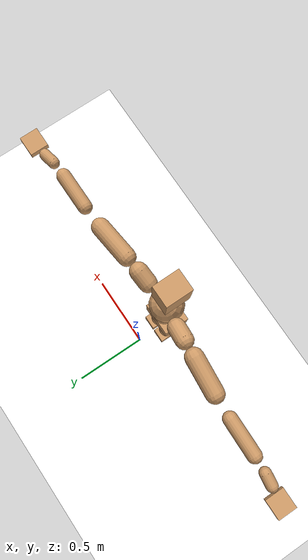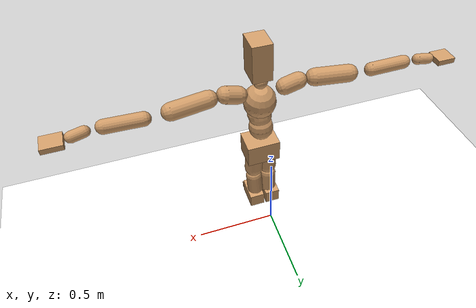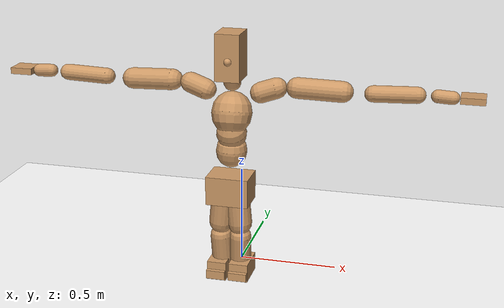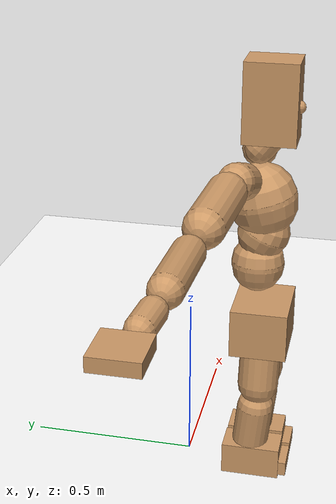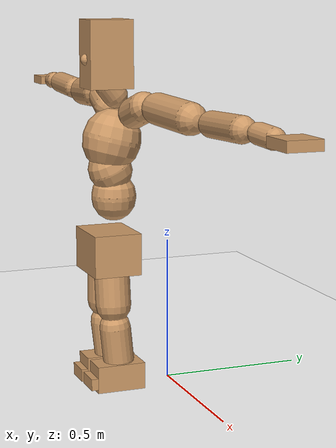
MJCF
<mujoco model="humanoid">
  <option integrator="implicitfast" />

  <visual>
    <global offwidth="1280" offheight="960" />
    <headlight active="1" ambient="0.34 0.34 0.34" diffuse="0.5 0.5 0.5" />
  </visual>

  <default>
    <joint damping="2" stiffness="2" armature="0.01" limited="true" solimplimit="0 .99 .01" />
    <geom condim="1" friction="0.7 0.005 0.0001" solimp=".99 .99 .003" solref="0.015 1" margin="0.001" rgba="0.8 0.6 .4 1" />
    <default class="smplcontact">
      <geom condim="3" friction="1. 0.005 0.0001" solref="0.015 1" solimp="0.98 0.98 0.001" priority="1" />
    </default>
    <default class="stiff_medium">
      <joint stiffness="10" />
    </default>
    <default class="stiff_medium_higher">
      <joint stiffness="50" />
    </default>
    <default class="stiff_high">
      <joint stiffness="100" />
    </default>
  </default>

  <asset>
    <texture type="skybox" builtin="gradient" rgb1="0.99 0.99 0.99" rgb2="0.608 0.828 0.892" width="100" />
    <texture builtin="flat" height="1278" mark="cross" markrgb="1 1 1" name="texgeom" random="0.01" rgb1="0.8 0.6 0.4" rgb2="0.8 0.6 0.4" type="cube" width="127" />
    <texture name="texplane" type="2d" builtin="checker" markrgb="1 1 1" rgb1="0.756 0.772 0.76" rgb2="0.6 0.6 0.6" width="100" height="100" />
    <material name="MatPlane" reflectance="0.5" texture="texplane" texrepeat="1 1" texuniform="true" />
    <material name="geom" texture="texgeom" texuniform="true" />
  </asset>

  <worldbody>
    <light name="tracking_light" pos="0 0 7" dir="0 0 -1" directional="true" cutoff="100" exponent="1" diffuse="1 1 1" specular="0.1 0.1 0.1" mode="trackcom" />
    <camera name="back" pos="0 3 2.4" xyaxes="-1 0 0 0 -1 2" mode="trackcom" />
    <camera name="side" pos="-3 0 2.4" xyaxes="0 -1 0 1 0 2" mode="trackcom" />
    <camera name="front_side" pos="-2.8 -2.8 0.8" xyaxes="0.5 -0.5 0 0.1 0.1 1" mode="trackcom" />
    <geom condim="3" name="floor" pos="0 0 0" rgba="1 1 1 1" size="100 100 .2" type="plane" material="MatPlane" />
    <body name="Pelvis" pos="-0.0018 -0.2233 0.49225" euler="90 0 0">
      <site name="Pelvis" size="0.01" />
      <freejoint name="Pelvis" />
      <geom type="box" pos="-0.0000 -0.0121 -0.0055" size="0.1069 0.0722 0.083" quat="1.0000 0.0000 0.0000 0.0000" density="3165.830099" name="Pelvis" />
      <body name="L_Hip" pos="0.03475 -0.0457 -0.0034">
        <joint name="L_Hip_x" type="hinge" pos="0 0 0" axis="1 0 0" stiffness="3.3281267346938783" range="-160.0 22.92" class="stiff_medium" damping="3.7390012674465334" armature="0.0018669335091027722"/>
        <joint name="L_Hip_y" type="hinge" pos="0 0 0" axis="0 1 0" stiffness="3.37791" range="-70.0 70.0" class="stiff_medium" damping="4.005630916019097" armature="0.004750001934737156"/>
        <joint name="L_Hip_z" type="hinge" pos="0 0 0" axis="0 0 1" stiffness="3.3736477551020405" range="-28.65 90.0" class="stiff_medium" damping="2.5063841398267126" armature="0.0018620679787552054"/>
        <geom type="capsule" density="2040.816327" fromto="0.00345 -0.0375 -0.00045 0.0137 -0.1501 -0.0018" size="0.0615" name="L_Hip" />
        <body name="L_Knee" pos="0.01715 -0.1876 -0.00225">
          <joint name="L_Knee_x" type="hinge" pos="0 0 0" axis="1 0 0" range="-5.16 171.89" damping="2.234113816312467" armature="0.002158215061835119" stiffness="0.7227130408163265"/>
          <joint name="L_Knee_y" type="hinge" pos="0 0 0" axis="0 1 0" range="-4.58 6.88" damping="3.4591258985845017" armature="0.00542202401615855" stiffness="0.6896382205818496"/>
          <joint name="L_Knee_z" type="hinge" pos="0 0 0" axis="0 0 1" range="-6.88 4.58" damping="2.2483389527020097" armature="0.00213118956511933" stiffness="0.7412274770408163"/>
          <geom type="capsule" density="1234.567901" fromto="-0.00135 -0.0398 -0.00435 -0.00545 -0.1592 -0.0175" size="0.0541" name="L_Knee" />
          <body name="L_Ankle" pos="-0.0068 -0.199 -0.02185">
            <joint name="L_Ankle_x" type="hinge" pos="0 0 0" axis="1 0 0" range="-45.84 45.84" class="stiff_medium" damping="3.020043228545064" armature="0.005067033945711607" stiffness="5.0"/>
            <joint name="L_Ankle_y" type="hinge" pos="0 0 0" axis="0 1 0" range="-74.48 22.92" class="stiff_medium" damping="1.5371232923821347" armature="0.005250551146630429" stiffness="5.0"/>
            <joint name="L_Ankle_z" type="hinge" pos="0 0 0" axis="0 0 1" range="-4.58 4.58" class="stiff_medium" damping="3.407863702828072" armature="0.006451963898362812" stiffness="5.0"/>
            <geom type="box" pos="0.01165 -0.01195 0.0121" size="0.0483 0.0464 0.085" quat="1.0000 0.0000 0.0000 0.0000" density="449.071558" name="L_Ankle" class="smplcontact" />
            <body name="L_Toe" pos="0.0132 -0.0279 0.05965">
              <joint name="L_Toe_x" type="hinge" pos="0 0 0" axis="1 0 0" range="-91.67 22.92" armature="0.007148590664291457" damping="1.1957082139294233" stiffness="1.0"/>
              <joint name="L_Toe_y" type="hinge" pos="0 0 0" axis="0 1 0" range="-4.58 4.58" armature="0.007990951927082678" damping="1.2641955487251706" stiffness="1.0"/>
              <joint name="L_Toe_z" type="hinge" pos="0 0 0" axis="0 0 1" range="-4.58 4.58" armature="0.009694161060559536" damping="1.392419553192179" stiffness="1.0"/>
              <geom type="box" pos="-0.0015 0.00275 0.0124" size="0.0478 0.02 0.0496" quat="1.0000 0.0000 0.0000 0.0000" density="423.206892" name="L_Toe" class="smplcontact" />
            </body>
          </body>
        </body>
      </body>
      <body name="R_Hip" pos="-0.03385 -0.04525 -0.00215">
        <joint name="R_Hip_x" type="hinge" pos="0 0 0" axis="1 0 0" stiffness="3.3281267346938783" range="-160.0 22.92" class="stiff_medium" damping="3.7390012674465334" armature="0.0018669335091027722"/>
        <joint name="R_Hip_y" type="hinge" pos="0 0 0" axis="0 1 0" stiffness="3.37791" range="-70.0 70.0" class="stiff_medium" damping="4.005630916019097" armature="0.004750001934737156"/>
        <joint name="R_Hip_z" type="hinge" pos="0 0 0" axis="0 0 1" stiffness="3.3736477551020405" range="-90.0 28.65" class="stiff_medium" damping="2.5063841398267126" armature="0.0018620679787552054"/>
        <geom type="capsule" density="2040.816327" fromto="-0.00385 -0.03825 -0.0009 -0.0153 -0.15305 -0.00355" size="0.0606" name="R_Hip" />
        <body name="R_Knee" pos="-0.01915 -0.1913 -0.00445">
          <joint name="R_Knee_x" type="hinge" pos="0 0 0" axis="1 0 0" range="-5.16 171.89" damping="2.234113816312467" armature="0.002158215061835119" stiffness="0.7227130408163265"/>
          <joint name="R_Knee_y" type="hinge" pos="0 0 0" axis="0 1 0" range="-6.88 4.58" damping="3.4591258985845017" armature="0.00542202401615855" stiffness="0.6896382205818496"/>
          <joint name="R_Knee_z" type="hinge" pos="0 0 0" axis="0 0 1" range="-4.58 6.88" damping="2.2483389527020097" armature="0.00213118956511933" stiffness="0.7412274770408163"/>
          <geom type="capsule" density="1234.567901" fromto="0.0016 -0.03985 -0.00425 0.0063 -0.15935 -0.0169" size="0.0541" name="R_Knee" />
          <body name="R_Ankle" pos="0.0079 -0.1992 -0.02115">
            <joint name="R_Ankle_x" type="hinge" pos="0 0 0" axis="1 0 0" range="-45.84 45.84" class="stiff_medium" damping="3.020043228545064" armature="0.005067033945711607" stiffness="5.0"/>
            <joint name="R_Ankle_y" type="hinge" pos="0 0 0" axis="0 1 0" range="-22.92 74.48" class="stiff_medium" damping="1.5371232923821347" armature="0.005250551146630429" stiffness="5.0"/>
            <joint name="R_Ankle_z" type="hinge" pos="0 0 0" axis="0 0 1" range="-4.58 4.58" class="stiff_medium" damping="3.407863702828072" armature="0.006451963898362812" stiffness="5.0"/>
            <geom type="box" pos="-0.0106 -0.0087 0.0128" size="0.0483 0.0478 0.0865" quat="1.0000 0.0000 0.0000 0.0000" density="434.700981" name="R_Ankle" class="smplcontact" />
            <body name="R_Toe" pos="-0.0127 -0.02405 0.06165">
              <joint name="R_Toe_x" type="hinge" pos="0 0 0" axis="1 0 0" range="-91.67 22.92" armature="0.007148590664291457" damping="1.1957082139294233" stiffness="1.0"/>
              <joint name="R_Toe_y" type="hinge" pos="0 0 0" axis="0 1 0" range="-4.58 4.58" armature="0.007990951927082678" damping="1.2641955487251706" stiffness="1.0"/>
              <joint name="R_Toe_z" type="hinge" pos="0 0 0" axis="0 0 1" range="-4.58 4.58" armature="0.009694161060559536" damping="1.392419553192179" stiffness="1.0"/>
              <geom type="box" pos="0.0021 0.00225 0.01135" size="0.0479 0.0216 0.0493" quat="1.0000 0.0000 0.0000 0.0000" density="407.384095" name="R_Toe" class="smplcontact" />
            </body>
          </body>
        </body>
      </body>
      <body name="Torso" pos="-0.0025 0.109 -0.0267">
        <joint name="Torso_x" type="hinge" pos="0 0 0" axis="1 0 0" range="-25.78 57.3" class="stiff_medium" damping="17.816617842535425" armature="0.012204442824088042" stiffness="11.55979291666667"/>
        <joint name="Torso_y" type="hinge" pos="0 0 0" axis="0 1 0" range="-57.3 57.3" class="stiff_high" damping="32.66648617457636" armature="0.023482633249027437" stiffness="113.6051595744681"/>
        <joint name="Torso_z" type="hinge" pos="0 0 0" axis="0 0 1" range="-34.38 34.38" class="stiff_high" damping="26.532055594632837" armature="0.016035100718302137" stiffness="109.75141136363638"/>
        <geom type="capsule" density="2040.816327" fromto="0.0025 0.0608 0.0005 0.003 0.0743 0.0006" size="0.0769" name="Torso" />
        <body name="Spine" pos="0.0055 0.1352 0.0011">
          <joint name="Spine_x" type="hinge" pos="0 0 0" axis="1 0 0" stiffness="11.652306458333332" range="-25.78 57.3" class="stiff_medium" damping="18.346849955919517" armature="0.012838923235543226"/>
          <joint name="Spine_y" type="hinge" pos="0 0 0" axis="0 1 0" stiffness="12.490174523809525" range="-57.3 57.3" class="stiff_high" damping="13.727844217436889" armature="0.02357524439747789"/>
          <joint name="Spine_z" type="hinge" pos="0 0 0" axis="0 0 1" stiffness="24.140002666666668" range="-34.38 34.38" class="stiff_high" damping="18.060617405335826" armature="0.018767022520783633"/>
          <geom type="capsule" density="2040.816327" fromto="0.0007 0.0238 0.0114 0.0008 0.0291 0.014" size="0.0755" name="Spine" />
          <body name="Chest" pos="0.0015 0.0529 0.0254">
            <joint name="Chest_x" type="hinge" pos="0 0 0" axis="1 0 0" stiffness="12.52777088888889" range="-25.78 57.3" class="stiff_medium" damping="19.323420684641814" armature="0.013246821899117786"/>
            <joint name="Chest_y" type="hinge" pos="0 0 0" axis="0 1 0" stiffness="14.856075609756099" range="-57.3 57.3" class="stiff_high" damping="14.973397185345428" armature="0.023580695741040242"/>
            <joint name="Chest_z" type="hinge" pos="0 0 0" axis="0 0 1" stiffness="24.504841860465113" range="-34.38 34.38" class="stiff_high" damping="18.776413152497923" armature="0.019982087898338156"/>
            <geom type="capsule" density="2040.816327" fromto="-0.0009 0.0682 -0.0173 -0.001 0.0833 -0.0212" size="0.1002" name="Chest" />
            <body name="Neck" pos="-0.0028 0.2139 -0.0429">
              <joint name="Neck_x" type="hinge" pos="0 0 0" axis="1 0 0" range="-28.65 57.3" class="stiff_medium_higher" damping="10.000000000000009" armature="0.010000000000000018" stiffness="50.0"/>
              <joint name="Neck_y" type="hinge" pos="0 0 0" axis="0 1 0" range="-40.11 40.11" class="stiff_medium_higher" damping="10.0" armature="0.01" stiffness="50.0"/>
              <joint name="Neck_z" type="hinge" pos="0 0 0" axis="0 0 1" range="-40.11 40.11" class="stiff_medium_higher" damping="10.000000000000002" armature="0.010000000000000005" stiffness="50.0"/>
              <geom type="capsule" density="1000" fromto="0.001 0.013 0.0103 0.0041 0.052 0.0411" size="0.0436" name="Neck" />
              <body name="Head" pos="0.0052 0.065 0.0513">
                <joint name="Head_x" type="hinge" pos="0 0 0" axis="1 0 0" range="-28.65 57.3" class="stiff_medium_higher" damping="2.0000000000000013" armature="0.010000000000000014" stiffness="50.0"/>
                <joint name="Head_y" type="hinge" pos="0 0 0" axis="0 1 0" range="-40.11 40.11" class="stiff_medium_higher" damping="2.0" armature="0.01" stiffness="50.0"/>
                <joint name="Head_z" type="hinge" pos="0 0 0" axis="0 0 1" range="-40.11 40.11" class="stiff_medium_higher" damping="2.0000000000000004" armature="0.010000000000000005" stiffness="50.0"/>
                <geom type="box" pos="-0.0042 0.0876 -0.0116" size="0.0606 0.1154 0.076" quat="1.0000 0.0000 0.0000 0.0000" density="1018.069894" name="Head" />
                <geom type="capsule" name="nose" size="0.02 0.01" pos="0 0.07 0.05" quat="1 0 0 0" mass="0" contype="0" conaffinity="0" />
              </body>
            </body>
            <body name="L_Thorax" pos="0.11032 0.17038 -0.04774">
              <joint name="L_Thorax_x" type="hinge" pos="0 0 0" axis="1 0 0" range="-10.89 4.58" class="stiff_medium_higher" damping="36.24085805878986" armature="0.018856138634744266" stiffness="87.06712295918368"/>
              <joint name="L_Thorax_y" type="hinge" pos="0 0 0" axis="0 1 0" range="-28.65 17.19" class="stiff_medium_higher" damping="40.96620891880995" armature="0.023898132129905863" stiffness="87.78041020408163"/>
              <joint name="L_Thorax_z" type="hinge" pos="0 0 0" axis="0 0 1" range="-31.51 40.11" class="stiff_medium_higher" damping="40.96835729355361" armature="0.023902786052476355" stiffness="87.77252448979593"/>
              <geom type="capsule" density="1000" fromto="0.02548 0.00854 -0.00252 0.10192 0.03416 -0.00994" size="0.0521" name="L_Thorax" />
              <body name="L_Shoulder" pos="0.1274 0.0427 -0.01246">
                <joint name="L_Shoulder_x" type="hinge" pos="0 0 0" axis="1 0 0" range="-97.4 97.4" class="stiff_medium" damping="10.216467793124695" armature="0.016750975720821074" stiffness="17.30848"/>
                <joint name="L_Shoulder_y" type="hinge" pos="0 0 0" axis="0 1 0" range="-108.86 80.21" class="stiff_medium" damping="12.210584630805666" armature="0.023662310849895674" stiffness="17.503030918367347"/>
                <joint name="L_Shoulder_z" type="hinge" pos="0 0 0" axis="0 0 1" range="-97.4 85.94" class="stiff_medium" damping="12.207996623471661" armature="0.023667800947755637" stiffness="17.491553877551024"/>
                <geom type="capsule" density="1000" fromto="0.07266 -0.00364 -0.0077 0.29078 -0.01428 -0.0308" size="0.0517" name="L_Shoulder" />
                <body name="L_Elbow" pos="0.36344 -0.01792 -0.0385">
                  <joint name="L_Elbow_x" type="hinge" pos="0 0 0" axis="1 0 0" range="-17.19 4.58" damping="7.586581525572798" armature="0.013620348817447107" stiffness="3.380601775510204"/>
                  <joint name="L_Elbow_y" type="hinge" pos="0 0 0" axis="0 1 0" range="-180.0 17.19" damping="9.758671052618123" armature="0.022523674987219224" stiffness="3.382455510204082"/>
                  <joint name="L_Elbow_z" type="hinge" pos="0 0 0" axis="0 0 1" range="-100.84 4.58" damping="9.76033597904074" armature="0.02255238761732955" stiffness="3.3793019183673465"/>
                  <geom type="capsule" density="1000" fromto="0.06972 0.00252 -0.00028 0.27916 0.01008 -0.00126" size="0.0405" name="L_Elbow" />
                  <body name="L_Wrist" pos="0.34888 0.0126 -0.00168">
                    <joint name="L_Wrist_x" type="hinge" pos="0 0 0" axis="1 0 0" range="-180.0 22.92" armature="0.013168550139584121" damping="2.8121939405269822" stiffness="3.002773530612245"/>
                    <joint name="L_Wrist_y" type="hinge" pos="0 0 0" axis="0 1 0" range="-17.19 17.19" armature="0.019145926143816192" damping="3.4076565933193845" stiffness="3.0325311428571426"/>
                    <joint name="L_Wrist_z" type="hinge" pos="0 0 0" axis="0 0 1" range="-22.92 22.92" armature="0.019468640829170863" damping="3.4294485001747153" stiffness="3.0205285306122445"/>
                    <geom type="capsule" density="1000" fromto="0.02352 -0.00224 -0.0042 0.09408 -0.0091 -0.0168" size="0.0318" name="L_Wrist" class="smplcontact" />
                    <body name="L_Hand" pos="0.1176 -0.01148 -0.02086">
                      <joint name="L_Hand_x" type="hinge" pos="0 0 0" axis="1 0 0" range="-17.19 17.19" armature="0.010418235140997446" damping="2.4154112856734296" stiffness="2.8000000000000003"/>
                      <joint name="L_Hand_y" type="hinge" pos="0 0 0" axis="0 1 0" range="-51.57 51.57" armature="0.01505797701299354" damping="2.9038710589963155" stiffness="2.8000000000000003"/>
                      <joint name="L_Hand_z" type="hinge" pos="0 0 0" axis="0 0 1" range="-91.67 91.67" armature="0.016294763602144737" damping="3.020772685456662" stiffness="2.8000000000000003"/>
                      <geom type="box" pos="0.06902 0.0014 -0.00812" size="0.0585 0.0158 0.0538" quat="1.0000 0.0000 0.0000 0.0000" density="400.552564" name="L_Hand" class="smplcontact" />
                    </body>
                  </body>
                </body>
              </body>
            </body>
            <body name="R_Thorax" pos="-0.11452 0.16632 -0.05404">
              <joint name="R_Thorax_x" type="hinge" pos="0 0 0" axis="1 0 0" range="-10.89 4.58" class="stiff_medium_higher" damping="36.24085805878986" armature="0.018856138634744266" stiffness="87.06712295918368"/>
              <joint name="R_Thorax_y" type="hinge" pos="0 0 0" axis="0 1 0" range="-17.19 28.65" class="stiff_medium_higher" damping="40.96620891880995" armature="0.023898132129905863" stiffness="87.78041020408163"/>
              <joint name="R_Thorax_z" type="hinge" pos="0 0 0" axis="0 0 1" range="-40.11 31.51" class="stiff_medium_higher" damping="40.96835729355361" armature="0.023902786052476355" stiffness="87.77252448979593"/>
              <geom type="capsule" density="1000" fromto="-0.02688 0.0091 -0.00252 -0.10752 0.0364 -0.01022" size="0.0511" name="R_Thorax" />
              <body name="R_Shoulder" pos="-0.1344 0.04564 -0.01274">
                <joint name="R_Shoulder_x" type="hinge" pos="0 0 0" axis="1 0 0" range="-97.4 97.4" class="stiff_medium" damping="10.216467793124695" armature="0.016750975720821074" stiffness="17.30848"/>
                <joint name="R_Shoulder_y" type="hinge" pos="0 0 0" axis="0 1 0" range="-80.21 108.86" class="stiff_medium" damping="12.210584630805666" armature="0.023662310849895674" stiffness="17.503030918367347"/>
                <joint name="R_Shoulder_z" type="hinge" pos="0 0 0" axis="0 0 1" range="-85.94 97.4" class="stiff_medium" damping="12.207996623471661" armature="0.023667800947755637" stiffness="17.491553877551024"/>
                <geom type="capsule" density="1000" fromto="-0.07098 -0.00378 -0.00602 -0.2842 -0.01498 -0.02394" size="0.0531" name="R_Shoulder" />
                <body name="R_Elbow" pos="-0.35518 -0.01862 -0.02996">
                  <joint name="R_Elbow_x" type="hinge" pos="0 0 0" axis="1 0 0" range="-17.19 4.58" damping="7.586581525572798" armature="0.013620348817447107" stiffness="3.380601775510204"/>
                  <joint name="R_Elbow_y" type="hinge" pos="0 0 0" axis="0 1 0" range="-17.19 180.0" damping="9.758671052618123" armature="0.022523674987219224" stiffness="3.382455510204082"/>
                  <joint name="R_Elbow_z" type="hinge" pos="0 0 0" axis="0 0 1" range="-4.58 100.84" damping="9.76033597904074" armature="0.02255238761732955" stiffness="3.3793019183673465"/>
                  <geom type="capsule" density="1000" fromto="-0.07154 0.00224 -0.00154 -0.28588 0.00868 -0.00616" size="0.0408" name="R_Elbow" />
                  <body name="R_Wrist" pos="-0.35742 0.01092 -0.00784">
                    <joint name="R_Wrist_x" type="hinge" pos="0 0 0" axis="1 0 0" range="-180.0 22.92" armature="0.013168550139584121" damping="2.8121939405269822" stiffness="3.002773530612245"/>
                    <joint name="R_Wrist_y" type="hinge" pos="0 0 0" axis="0 1 0" range="-17.19 17.19" armature="0.019145926143816192" damping="3.4076565933193845" stiffness="3.0325311428571426"/>
                    <joint name="R_Wrist_z" type="hinge" pos="0 0 0" axis="0 0 1" range="-22.92 22.92" armature="0.019468640829170863" damping="3.4294485001747153" stiffness="3.0205285306122445"/>
                    <geom type="capsule" density="1000" fromto="-0.02366 -0.00168 -0.00294 -0.09478 -0.00686 -0.01162" size="0.0326" name="R_Wrist" class="smplcontact" />
                    <body name="R_Hand" pos="-0.11844 -0.00854 -0.01442">
                      <joint name="R_Hand_x" type="hinge" pos="0 0 0" axis="1 0 0" range="-17.19 17.19" armature="0.010418235140997446" damping="2.4154112856734296" stiffness="2.8000000000000003"/>
                      <joint name="R_Hand_y" type="hinge" pos="0 0 0" axis="0 1 0" range="-51.57 51.57" armature="0.01505797701299354" damping="2.9038710589963155" stiffness="2.8000000000000003"/>
                      <joint name="R_Hand_z" type="hinge" pos="0 0 0" axis="0 0 1" range="-91.67 91.67" armature="0.016294763602144737" damping="3.020772685456662" stiffness="2.8000000000000003"/>
                      <geom type="box" pos="-0.06468 -0.00126 -0.01106" size="0.0569 0.0164 0.0546" quat="1.0000 0.0000 0.0000 0.0000" density="403.679611" name="R_Hand" class="smplcontact" />
                    </body>
                  </body>
                </body>
              </body>
            </body>
          </body>
        </body>
      </body>
    </body>
  </worldbody>
  <actuator>
    <general name="L_Hip_x" joint="L_Hip_x" biastype="affine" gainprm="95.62708680036044" biasprm="-71.66280919852072 -59.9062812244898 -0.49853350232620447" ctrllimited="true" ctrlrange="-1 1" forcerange="-119.8125624489796 119.8125624489796" />
    <general name="L_Hip_y" joint="L_Hip_y" biastype="affine" gainprm="74.28412068341248" biasprm="0.0 -60.80238 -0.8011261832038193" ctrllimited="true" ctrlrange="-1 1" forcerange="-121.60476 121.60476" />
    <general name="L_Hip_z" joint="L_Hip_z" biastype="affine" gainprm="62.8763546966517" biasprm="32.51128833240271 -60.72565959183673 -0.5012768279653426" ctrllimited="true" ctrlrange="-1 1" forcerange="-121.45131918367346 121.45131918367346" />
    <general name="L_Knee_x" joint="L_Knee_x" biastype="affine" gainprm="100.49667747567948" biasprm="94.63886492809961 -65.04417367346939 -0.5585284540781168" ctrllimited="true" ctrlrange="-1 1" forcerange="-130.08834734693878 130.08834734693878" />
    <general name="L_Knee_y" joint="L_Knee_y" biastype="affine" gainprm="6.207201182643047" biasprm="1.2457733612634387 -62.06743985236647 -0.8647814746461254" ctrllimited="true" ctrlrange="-1 1" forcerange="-124.13487970473294 124.13487970473294" />
    <general name="L_Knee_z" joint="L_Knee_z" biastype="affine" gainprm="6.671538692002082" biasprm="-1.3389650079934372 -66.71047293367346 -0.5620847381755024" ctrllimited="true" ctrlrange="-1 1" forcerange="-133.42094586734692 133.42094586734692" />
    <general name="L_Ankle_x" joint="L_Ankle_x" biastype="affine" gainprm="36.002651810139035" biasprm="0.0 -45.0 -1.006681076181688" ctrllimited="true" ctrlrange="-1 1" forcerange="-90.0 90.0" />
    <general name="L_Ankle_y" joint="L_Ankle_y" biastype="affine" gainprm="38.24889055745574" biasprm="-20.24756465238622 -45.0 -1.0247488615880898" ctrllimited="true" ctrlrange="-1 1" forcerange="-90.0 90.0" />
    <general name="L_Ankle_z" joint="L_Ankle_z" biastype="affine" gainprm="3.5971235883603128" biasprm="0.0 -45.0 -1.1359545676093574" ctrllimited="true" ctrlrange="-1 1" forcerange="-90.0 90.0" />
    <general name="L_Toe_x" joint="L_Toe_x" biastype="affine" gainprm="35.99951021748544" biasprm="-21.598449493429825 -36.0 -0.47828328557176936" ctrllimited="true" ctrlrange="-1 1" forcerange="-72.0 72.0" />
    <general name="L_Toe_y" joint="L_Toe_y" biastype="affine" gainprm="2.8776988706882505" biasprm="0.0 -36.0 -0.5056782194900683" ctrllimited="true" ctrlrange="-1 1" forcerange="-72.0 72.0" />
    <general name="L_Toe_z" joint="L_Toe_z" biastype="affine" gainprm="2.8776988706882505" biasprm="0.0 -36.0 -0.5569678212768716" ctrllimited="true" ctrlrange="-1 1" forcerange="-72.0 72.0" />
    <general name="R_Hip_x" joint="R_Hip_x" biastype="affine" gainprm="95.62708680036044" biasprm="-71.66280919852072 -59.9062812244898 -0.49853350232620447" ctrllimited="true" ctrlrange="-1 1" forcerange="-119.8125624489796 119.8125624489796" />
    <general name="R_Hip_y" joint="R_Hip_y" biastype="affine" gainprm="74.28412068341248" biasprm="0.0 -60.80238 -0.8011261832038193" ctrllimited="true" ctrlrange="-1 1" forcerange="-121.60476 121.60476" />
    <general name="R_Hip_z" joint="R_Hip_z" biastype="affine" gainprm="62.8763546966517" biasprm="-32.51128833240271 -60.72565959183673 -0.5012768279653426" ctrllimited="true" ctrlrange="-1 1" forcerange="-121.45131918367346 121.45131918367346" />
    <general name="R_Knee_x" joint="R_Knee_x" biastype="affine" gainprm="100.49667747567948" biasprm="94.63886492809961 -65.04417367346939 -0.5585284540781168" ctrllimited="true" ctrlrange="-1 1" forcerange="-130.08834734693878 130.08834734693878" />
    <general name="R_Knee_y" joint="R_Knee_y" biastype="affine" gainprm="6.207201182643047" biasprm="-1.2457733612634387 -62.06743985236647 -0.8647814746461254" ctrllimited="true" ctrlrange="-1 1" forcerange="-124.13487970473294 124.13487970473294" />
    <general name="R_Knee_z" joint="R_Knee_z" biastype="affine" gainprm="6.671538692002082" biasprm="1.3389650079934372 -66.71047293367346 -0.5620847381755024" ctrllimited="true" ctrlrange="-1 1" forcerange="-133.42094586734692 133.42094586734692" />
    <general name="R_Ankle_x" joint="R_Ankle_x" biastype="affine" gainprm="36.002651810139035" biasprm="0.0 -45.0 -1.006681076181688" ctrllimited="true" ctrlrange="-1 1" forcerange="-90.0 90.0" />
    <general name="R_Ankle_y" joint="R_Ankle_y" biastype="affine" gainprm="38.24889055745574" biasprm="20.24756465238622 -45.0 -1.0247488615880898" ctrllimited="true" ctrlrange="-1 1" forcerange="-90.0 90.0" />
    <general name="R_Ankle_z" joint="R_Ankle_z" biastype="affine" gainprm="3.5971235883603128" biasprm="0.0 -45.0 -1.1359545676093574" ctrllimited="true" ctrlrange="-1 1" forcerange="-90.0 90.0" />
    <general name="R_Toe_x" joint="R_Toe_x" biastype="affine" gainprm="35.99951021748544" biasprm="-21.598449493429825 -36.0 -0.47828328557176936" ctrllimited="true" ctrlrange="-1 1" forcerange="-72.0 72.0" />
    <general name="R_Toe_y" joint="R_Toe_y" biastype="affine" gainprm="2.8776988706882505" biasprm="0.0 -36.0 -0.5056782194900683" ctrllimited="true" ctrlrange="-1 1" forcerange="-72.0 72.0" />
    <general name="R_Toe_z" joint="R_Toe_z" biastype="affine" gainprm="2.8776988706882505" biasprm="0.0 -36.0 -0.5569678212768716" ctrllimited="true" ctrlrange="-1 1" forcerange="-72.0 72.0" />
    <general name="Torso_x" joint="Torso_x" biastype="affine" gainprm="201.14310764492842" biasprm="76.31235860577928 -277.43503000000004 -4.75109809134278" ctrllimited="true" ctrlrange="-1 1" forcerange="-416.1525450000001 416.1525450000001" />
    <general name="Torso_y" joint="Torso_y" biastype="affine" gainprm="272.67246693299046" biasprm="0.0 -272.65238297872344 -6.533297234915273" ctrllimited="true" ctrlrange="-1 1" forcerange="-408.9785744680852 408.9785744680852" />
    <general name="Torso_z" joint="Torso_z" biastype="affine" gainprm="158.05367395985348" biasprm="0.0 -263.4033872727273 -5.306411118926567" ctrllimited="true" ctrlrange="-1 1" forcerange="-395.10508090909093 395.10508090909093" />
    <general name="Spine_x" joint="Spine_x" biastype="affine" gainprm="202.75286496534218" biasprm="76.9230898375973 -279.655355 -4.892493321578538" ctrllimited="true" ctrlrange="-1 1" forcerange="-419.4830325 419.4830325" />
    <general name="Spine_y" joint="Spine_y" biastype="affine" gainprm="299.7862696190556" biasprm="0.0 -299.7641885714286 -6.8639221087184445" ctrllimited="true" ctrlrange="-1 1" forcerange="-449.6462828571429 449.6462828571429" />
    <general name="Spine_z" joint="Spine_z" biastype="affine" gainprm="173.82082214076556" biasprm="0.0 -289.680032 -6.020205801778609" ctrllimited="true" ctrlrange="-1 1" forcerange="-434.520048 434.520048" />
    <general name="Chest_x" joint="Chest_x" biastype="affine" gainprm="217.98615136277013" biasprm="82.70249748380492 -300.6665013333334 -5.152912182571151" ctrllimited="true" ctrlrange="-1 1" forcerange="-450.999752 450.999752" />
    <general name="Chest_y" joint="Chest_y" biastype="affine" gainprm="356.57207829543177" biasprm="0.0 -356.5458146341464 -7.486698592672714" ctrllimited="true" ctrlrange="-1 1" forcerange="-534.8187219512196 534.8187219512196" />
    <general name="Chest_z" joint="Chest_z" biastype="affine" gainprm="176.44785783296902" biasprm="0.0 -294.0581023255814 -6.258804384165974" ctrllimited="true" ctrlrange="-1 1" forcerange="-441.08715348837205 441.08715348837205" />
    <general name="Neck_x" joint="Neck_x" biastype="affine" gainprm="27.00198885760427" biasprm="9.000662952534757 -36.0 -0.8000000000000007" ctrllimited="true" ctrlrange="-1 1" forcerange="-72.0 72.0" />
    <general name="Neck_y" joint="Neck_y" biastype="affine" gainprm="25.20185626709732" biasprm="0.0 -36.0 -0.8" ctrllimited="true" ctrlrange="-1 1" forcerange="-72.0 72.0" />
    <general name="Neck_z" joint="Neck_z" biastype="affine" gainprm="25.20185626709732" biasprm="0.0 -36.0 -0.8000000000000003" ctrllimited="true" ctrlrange="-1 1" forcerange="-72.0 72.0" />
    <general name="Head_x" joint="Head_x" biastype="affine" gainprm="18.001325905069514" biasprm="6.000441968356505 -24.0 -0.8000000000000006" ctrllimited="true" ctrlrange="-1 1" forcerange="-48.0 48.0" />
    <general name="Head_y" joint="Head_y" biastype="affine" gainprm="16.801237511398213" biasprm="0.0 -24.0 -0.8" ctrllimited="true" ctrlrange="-1 1" forcerange="-48.0 48.0" />
    <general name="Head_z" joint="Head_z" biastype="affine" gainprm="16.801237511398213" biasprm="0.0 -24.0 -0.8000000000000003" ctrllimited="true" ctrlrange="-1 1" forcerange="-48.0 48.0" />
    <general name="L_Thorax_x" joint="L_Thorax_x" biastype="affine" gainprm="28.21000227853141" biasprm="-11.506471517616887 -208.96109510204082 -2.8992686447031892" ctrllimited="true" ctrlrange="-1 1" forcerange="-417.92219020408163 417.92219020408163" />
    <general name="L_Thorax_y" joint="L_Thorax_y" biastype="affine" gainprm="84.27540118209936" biasprm="-21.06885029552484 -210.6729844897959 -3.277296713504796" ctrllimited="true" ctrlrange="-1 1" forcerange="-421.3459689795918 421.3459689795918" />
    <general name="L_Thorax_z" joint="L_Thorax_z" biastype="affine" gainprm="131.65929338702185" biasprm="15.809409705785923 -210.6540587755102 -3.2774685834842887" ctrllimited="true" ctrlrange="-1 1" forcerange="-421.3081175510204 421.3081175510204" />
    <general name="L_Shoulder_x" joint="L_Shoulder_x" biastype="affine" gainprm="141.23310021032776" biasprm="0.0 -83.080704 -2.724391411499919" ctrllimited="true" ctrlrange="-1 1" forcerange="-166.161408 166.161408" />
    <general name="L_Shoulder_y" joint="L_Shoulder_y" biastype="affine" gainprm="138.61955280584408" biasprm="-21.005184259202586 -84.01454840816328 -3.256155901548178" ctrllimited="true" ctrlrange="-1 1" forcerange="-168.02909681632656 168.02909681632656" />
    <general name="L_Shoulder_z" joint="L_Shoulder_z" biastype="affine" gainprm="134.33037540273168" biasprm="-8.396564318290107 -83.9594586122449 -3.25546576625911" ctrllimited="true" ctrlrange="-1 1" forcerange="-167.9189172244898 167.9189172244898" />
    <general name="L_Elbow_x" joint="L_Elbow_x" biastype="affine" gainprm="23.120771250680953" biasprm="-13.39241733904855 -121.70166391836734 -1.213853044091648" ctrllimited="true" ctrlrange="-1 1" forcerange="-243.4033278367347 243.4033278367347" />
    <general name="L_Elbow_y" joint="L_Elbow_y" biastype="affine" gainprm="209.53995807470082" biasprm="-173.0067476755517 -121.76839836734695 -1.5613873684188997" ctrllimited="true" ctrlrange="-1 1" forcerange="-243.5367967346939 243.5367967346939" />
    <general name="L_Elbow_z" joint="L_Elbow_z" biastype="affine" gainprm="111.91798423395207" biasprm="-102.19337091975173 -121.65486906122447 -1.5616537566465185" ctrllimited="true" ctrlrange="-1 1" forcerange="-243.30973812244895 243.30973812244895" />
    <general name="L_Wrist_x" joint="L_Wrist_x" biastype="affine" gainprm="31.904067455407095" biasprm="-24.696880129584795 -18.01664118367347 -1.124877576210793" ctrllimited="true" ctrlrange="-1 1" forcerange="-36.03328236734694 36.03328236734694" />
    <general name="L_Wrist_y" joint="L_Wrist_y" biastype="affine" gainprm="5.458958141984436" biasprm="0.0 -18.195186857142858 -1.363062637327754" ctrllimited="true" ctrlrange="-1 1" forcerange="-36.390373714285715 36.390373714285715" />
    <general name="L_Wrist_z" joint="L_Wrist_z" biastype="affine" gainprm="7.249802464681568" biasprm="0.0 -18.123171183673467 -1.3717794000698862" ctrllimited="true" ctrlrange="-1 1" forcerange="-36.246342367346934 36.246342367346934" />
    <general name="L_Hand_x" joint="L_Hand_x" biastype="affine" gainprm="5.040371253419465" biasprm="0.0 -16.8 -0.9661645142693719" ctrllimited="true" ctrlrange="-1 1" forcerange="-33.6 33.6" />
    <general name="L_Hand_y" joint="L_Hand_y" biastype="affine" gainprm="15.121113760258392" biasprm="0.0 -16.8 -1.1615484235985263" ctrllimited="true" ctrlrange="-1 1" forcerange="-33.6 33.6" />
    <general name="L_Hand_z" joint="L_Hand_z" biastype="affine" gainprm="26.879047865093792" biasprm="0.0 -16.8 -1.208309074182665" ctrllimited="true" ctrlrange="-1 1" forcerange="-33.6 33.6" />
    <general name="R_Thorax_x" joint="R_Thorax_x" biastype="affine" gainprm="28.21000227853141" biasprm="-11.506471517616887 -208.96109510204082 -2.8992686447031892" ctrllimited="true" ctrlrange="-1 1" forcerange="-417.92219020408163 417.92219020408163" />
    <general name="R_Thorax_y" joint="R_Thorax_y" biastype="affine" gainprm="84.27540118209936" biasprm="21.068850295524825 -210.6729844897959 -3.277296713504796" ctrllimited="true" ctrlrange="-1 1" forcerange="-421.3459689795918 421.3459689795918" />
    <general name="R_Thorax_z" joint="R_Thorax_z" biastype="affine" gainprm="131.65929338702185" biasprm="-15.809409705785923 -210.6540587755102 -3.2774685834842887" ctrllimited="true" ctrlrange="-1 1" forcerange="-421.3081175510204 421.3081175510204" />
    <general name="R_Shoulder_x" joint="R_Shoulder_x" biastype="affine" gainprm="141.23310021032776" biasprm="0.0 -83.080704 -2.724391411499919" ctrllimited="true" ctrlrange="-1 1" forcerange="-166.161408 166.161408" />
    <general name="R_Shoulder_y" joint="R_Shoulder_y" biastype="affine" gainprm="138.61955280584408" biasprm="21.005184259202586 -84.01454840816328 -3.256155901548178" ctrllimited="true" ctrlrange="-1 1" forcerange="-168.02909681632656 168.02909681632656" />
    <general name="R_Shoulder_z" joint="R_Shoulder_z" biastype="affine" gainprm="134.33037540273168" biasprm="8.396564318290089 -83.9594586122449 -3.25546576625911" ctrllimited="true" ctrlrange="-1 1" forcerange="-167.9189172244898 167.9189172244898" />
    <general name="R_Elbow_x" joint="R_Elbow_x" biastype="affine" gainprm="23.120771250680953" biasprm="-13.39241733904855 -121.70166391836734 -1.213853044091648" ctrllimited="true" ctrlrange="-1 1" forcerange="-243.4033278367347 243.4033278367347" />
    <general name="R_Elbow_y" joint="R_Elbow_y" biastype="affine" gainprm="209.53995807470082" biasprm="173.0067476755517 -121.76839836734695 -1.5613873684188997" ctrllimited="true" ctrlrange="-1 1" forcerange="-243.5367967346939 243.5367967346939" />
    <general name="R_Elbow_z" joint="R_Elbow_z" biastype="affine" gainprm="111.91798423395207" biasprm="102.19337091975173 -121.65486906122447 -1.5616537566465185" ctrllimited="true" ctrlrange="-1 1" forcerange="-243.30973812244895 243.30973812244895" />
    <general name="R_Wrist_x" joint="R_Wrist_x" biastype="affine" gainprm="31.904067455407095" biasprm="-24.696880129584795 -18.01664118367347 -1.124877576210793" ctrllimited="true" ctrlrange="-1 1" forcerange="-36.03328236734694 36.03328236734694" />
    <general name="R_Wrist_y" joint="R_Wrist_y" biastype="affine" gainprm="5.458958141984436" biasprm="0.0 -18.195186857142858 -1.363062637327754" ctrllimited="true" ctrlrange="-1 1" forcerange="-36.390373714285715 36.390373714285715" />
    <general name="R_Wrist_z" joint="R_Wrist_z" biastype="affine" gainprm="7.249802464681568" biasprm="0.0 -18.123171183673467 -1.3717794000698862" ctrllimited="true" ctrlrange="-1 1" forcerange="-36.246342367346934 36.246342367346934" />
    <general name="R_Hand_x" joint="R_Hand_x" biastype="affine" gainprm="5.040371253419465" biasprm="0.0 -16.8 -0.9661645142693719" ctrllimited="true" ctrlrange="-1 1" forcerange="-33.6 33.6" />
    <general name="R_Hand_y" joint="R_Hand_y" biastype="affine" gainprm="15.121113760258392" biasprm="0.0 -16.8 -1.1615484235985263" ctrllimited="true" ctrlrange="-1 1" forcerange="-33.6 33.6" />
    <general name="R_Hand_z" joint="R_Hand_z" biastype="affine" gainprm="26.879047865093792" biasprm="0.0 -16.8 -1.208309074182665" ctrllimited="true" ctrlrange="-1 1" forcerange="-33.6 33.6" />
  </actuator>
  <contact>
    <exclude body1="Torso" body2="Chest" />
    <exclude body1="Head" body2="Chest" />
    <exclude body1="R_Knee" body2="R_Toe" />
    <exclude body1="R_Knee" body2="L_Ankle" />
    <exclude body1="R_Knee" body2="L_Toe" />
    <exclude body1="L_Knee" body2="L_Toe" />
    <exclude body1="L_Knee" body2="R_Ankle" />
    <exclude body1="L_Knee" body2="R_Toe" />
    <exclude body1="L_Shoulder" body2="Chest" />
    <exclude body1="R_Shoulder" body2="Chest" />
  </contact>
  <sensor>
    <framelinvel name="sensor_Pelvis_framelinvel" objtype="xbody" objname="Pelvis" />
    <framelinvel name="sensor_L_Hip_framelinvel" objtype="xbody" objname="L_Hip" />
    <framelinvel name="sensor_L_Knee_framelinvel" objtype="xbody" objname="L_Knee" />
    <framelinvel name="sensor_L_Ankle_framelinvel" objtype="xbody" objname="L_Ankle" />
    <framelinvel name="sensor_L_Toe_framelinvel" objtype="xbody" objname="L_Toe" />
    <framelinvel name="sensor_R_Hip_framelinvel" objtype="xbody" objname="R_Hip" />
    <framelinvel name="sensor_R_Knee_framelinvel" objtype="xbody" objname="R_Knee" />
    <framelinvel name="sensor_R_Ankle_framelinvel" objtype="xbody" objname="R_Ankle" />
    <framelinvel name="sensor_R_Toe_framelinvel" objtype="xbody" objname="R_Toe" />
    <framelinvel name="sensor_Torso_framelinvel" objtype="xbody" objname="Torso" />
    <framelinvel name="sensor_Spine_framelinvel" objtype="xbody" objname="Spine" />
    <framelinvel name="sensor_Chest_framelinvel" objtype="xbody" objname="Chest" />
    <framelinvel name="sensor_Neck_framelinvel" objtype="xbody" objname="Neck" />
    <framelinvel name="sensor_Head_framelinvel" objtype="xbody" objname="Head" />
    <framelinvel name="sensor_L_Thorax_framelinvel" objtype="xbody" objname="L_Thorax" />
    <framelinvel name="sensor_L_Shoulder_framelinvel" objtype="xbody" objname="L_Shoulder" />
    <framelinvel name="sensor_L_Elbow_framelinvel" objtype="xbody" objname="L_Elbow" />
    <framelinvel name="sensor_L_Wrist_framelinvel" objtype="xbody" objname="L_Wrist" />
    <framelinvel name="sensor_L_Hand_framelinvel" objtype="xbody" objname="L_Hand" />
    <framelinvel name="sensor_R_Thorax_framelinvel" objtype="xbody" objname="R_Thorax" />
    <framelinvel name="sensor_R_Shoulder_framelinvel" objtype="xbody" objname="R_Shoulder" />
    <framelinvel name="sensor_R_Elbow_framelinvel" objtype="xbody" objname="R_Elbow" />
    <framelinvel name="sensor_R_Wrist_framelinvel" objtype="xbody" objname="R_Wrist" />
    <framelinvel name="sensor_R_Hand_framelinvel" objtype="xbody" objname="R_Hand" />
    <frameangvel name="sensor_Pelvis_frameangvel" objtype="xbody" objname="Pelvis" />
    <frameangvel name="sensor_L_Hip_frameangvel" objtype="xbody" objname="L_Hip" />
    <frameangvel name="sensor_L_Knee_frameangvel" objtype="xbody" objname="L_Knee" />
    <frameangvel name="sensor_L_Ankle_frameangvel" objtype="xbody" objname="L_Ankle" />
    <frameangvel name="sensor_L_Toe_frameangvel" objtype="xbody" objname="L_Toe" />
    <frameangvel name="sensor_R_Hip_frameangvel" objtype="xbody" objname="R_Hip" />
    <frameangvel name="sensor_R_Knee_frameangvel" objtype="xbody" objname="R_Knee" />
    <frameangvel name="sensor_R_Ankle_frameangvel" objtype="xbody" objname="R_Ankle" />
    <frameangvel name="sensor_R_Toe_frameangvel" objtype="xbody" objname="R_Toe" />
    <frameangvel name="sensor_Torso_frameangvel" objtype="xbody" objname="Torso" />
    <frameangvel name="sensor_Spine_frameangvel" objtype="xbody" objname="Spine" />
    <frameangvel name="sensor_Chest_frameangvel" objtype="xbody" objname="Chest" />
    <frameangvel name="sensor_Neck_frameangvel" objtype="xbody" objname="Neck" />
    <frameangvel name="sensor_Head_frameangvel" objtype="xbody" objname="Head" />
    <frameangvel name="sensor_L_Thorax_frameangvel" objtype="xbody" objname="L_Thorax" />
    <frameangvel name="sensor_L_Shoulder_frameangvel" objtype="xbody" objname="L_Shoulder" />
    <frameangvel name="sensor_L_Elbow_frameangvel" objtype="xbody" objname="L_Elbow" />
    <frameangvel name="sensor_L_Wrist_frameangvel" objtype="xbody" objname="L_Wrist" />
    <frameangvel name="sensor_L_Hand_frameangvel" objtype="xbody" objname="L_Hand" />
    <frameangvel name="sensor_R_Thorax_frameangvel" objtype="xbody" objname="R_Thorax" />
    <frameangvel name="sensor_R_Shoulder_frameangvel" objtype="xbody" objname="R_Shoulder" />
    <frameangvel name="sensor_R_Elbow_frameangvel" objtype="xbody" objname="R_Elbow" />
    <frameangvel name="sensor_R_Wrist_frameangvel" objtype="xbody" objname="R_Wrist" />
    <frameangvel name="sensor_R_Hand_frameangvel" objtype="xbody" objname="R_Hand" />
    <subtreelinvel name="Chest_subtreelinvel" body="Chest" />
    <gyro name="Pelvis_gyro" site="Pelvis" />
  </sensor>
</mujoco>
